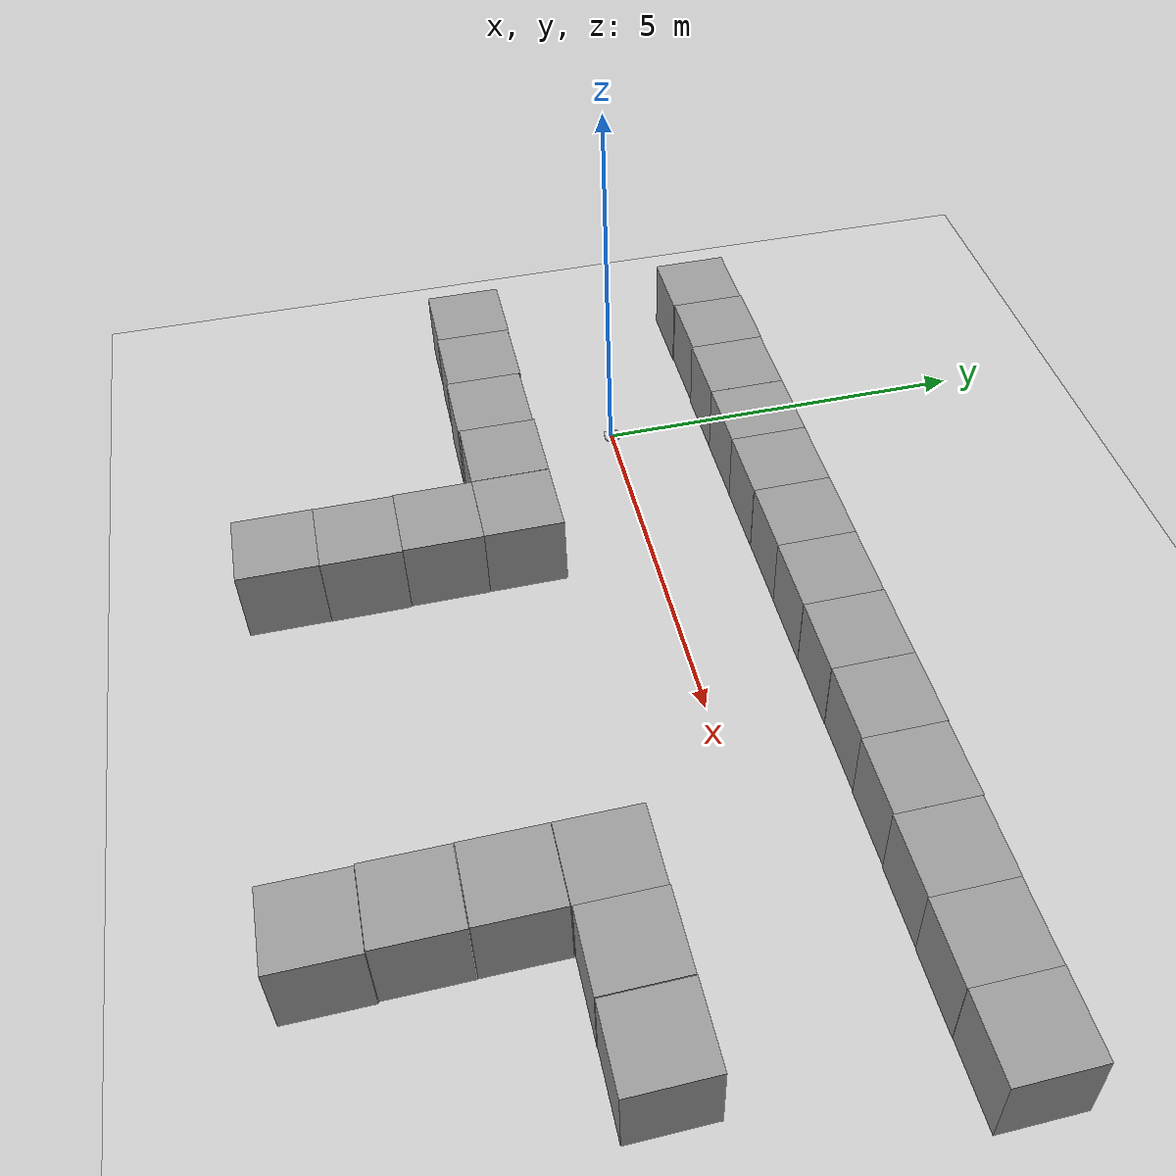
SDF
<sdf version="1.7">
 <world name="default">
  <light name="sun" type="directional">
   <pose>0 0 10 0 -0 0</pose>
   <diffuse>0.8 0.8 0.8 1</diffuse>
   <specular>0.2 0.2 0.2 1</specular>
   <attenuation>
    <range>1000</range>
    <constant>0.9</constant>
    <linear>0.01</linear>
    <quadratic>0.001</quadratic>
   </attenuation>
   <direction>-0.5 0.1 -0.9</direction>
   <spot><inner_angle>0</inner_angle><outer_angle>0</outer_angle><falloff>0</falloff></spot>
  </light>
  <model name="ground_plane">
   <static>1</static>
   <link name="link">
    <collision name="collision">
     <geometry><plane><normal>0 0 1</normal><size>100 100</size></plane></geometry>
     <surface>
      <contact><collide_bitmask>65535</collide_bitmask></contact>
      <friction><ode><mu>100</mu><mu2>50</mu2></ode></friction>
     </surface>
    </collision>
    <visual name="visual">
     <cast_shadows>0</cast_shadows>
     <geometry><plane><normal>0 0 1</normal><size>100 100</size></plane></geometry>
     <material>
      <script><uri>file://media/materials/scripts/gazebo.material</uri><name>Gazebo/Grey</name></script>
     </material>
    </visual>
   </link>
  </model>
  <gravity>0 0 -9.8</gravity>
  <magnetic_field>6e-06 2.3e-05 -4.2e-05</magnetic_field>
  <atmosphere type="adiabatic"/>
  <physics type="ode">
   <max_step_size>0.001</max_step_size>
   <real_time_factor>1</real_time_factor>
   <real_time_update_rate>1000</real_time_update_rate>
  </physics>
  <scene><ambient>0.4 0.4 0.4 1</ambient><background>0.7 0.7 0.7 1</background><shadows>1</shadows></scene>
  <spherical_coordinates>
   <surface_model>EARTH_WGS84</surface_model>
   <latitude_deg>0</latitude_deg>
   <longitude_deg>0</longitude_deg>
   <elevation>0</elevation>
   <heading_deg>0</heading_deg>
  </spherical_coordinates>
  <model name="fwomni">
   <link name="base_footprint">
    <inertial>
     <pose>0.002014 -0 0.005878 0 -0 0</pose>
     <mass>3.04689</mass>
     <inertia>
      <ixx>0.00914958</ixx>
      <ixy>-2.00784e-20</ixy>
      <ixz>-0.000169029</ixz>
      <iyy>0.00953652</iyy>
      <iyz>-2.13965e-20</iyz>
      <izz>0.0183689</izz>
     </inertia>
    </inertial>
    <collision name="base_footprint_fixed_joint_lump__base_link_collision">
     <pose>0 0 0.005 0 -0 0</pose>
     <geometry>
      <mesh>
       <scale>0.001 0.001 0.001</scale>
       <uri>/home/dell/Desktop/noetic/fwomni_ws/src/fwomni/meshes/base_link.stl</uri>
      </mesh>
     </geometry>
     <surface><friction><ode><mu>0.2</mu><mu2>0.2</mu2></ode></friction></surface>
    </collision>
    <collision name="base_footprint_fixed_joint_lump__rplidar_collision_1">
     <pose>0 0 0.045 0 -0 0</pose>
     <geometry>
      <mesh>
       <scale>0.001 0.001 0.001</scale>
       <uri>/home/dell/Desktop/noetic/fwomni_ws/src/fwomni/meshes/rplidar.stl</uri>
      </mesh>
     </geometry>
     <surface><friction><ode><mu>0.2</mu><mu2>0.2</mu2></ode></friction></surface>
    </collision>
    <visual name="base_footprint_fixed_joint_lump__base_link_visual">
     <pose>0 0 0.005 0 -0 0</pose>
     <geometry>
      <mesh>
       <scale>0.001 0.001 0.001</scale>
       <uri>/home/dell/Desktop/noetic/fwomni_ws/src/fwomni/meshes/base_link.stl</uri>
      </mesh>
     </geometry>
     <material>
      <script><name>Gazebo/Silver</name><uri>file://media/materials/scripts/gazebo.material</uri></script>
     </material>
    </visual>
    <visual name="base_footprint_fixed_joint_lump__rplidar_visual_1">
     <pose>0 0 0.045 0 -0 0</pose>
     <geometry>
      <mesh>
       <scale>0.001 0.001 0.001</scale>
       <uri>/home/dell/Desktop/noetic/fwomni_ws/src/fwomni/meshes/rplidar.stl</uri>
      </mesh>
     </geometry>
     <material>
      <script><name>Gazebo/Silver</name><uri>file://media/materials/scripts/gazebo.material</uri></script>
     </material>
    </visual>
    <self_collide>1</self_collide>
    <sensor name="head_hokuyo_sensor" type="ray">
     <visualize>0</visualize>
     <update_rate>20</update_rate>
     <ray>
      <scan>
       <horizontal>
        <samples>1400</samples>
        <resolution>1</resolution>
        <min_angle>-3.14159</min_angle>
        <max_angle>3.14159</max_angle>
       </horizontal>
       <vertical><samples>1</samples><min_angle>0</min_angle><max_angle>0</max_angle></vertical>
      </scan>
      <range><min>0.05</min><max>12</max><resolution>0.01</resolution></range>
      <noise><type>gaussian</type><mean>0</mean><stddev>0.01</stddev></noise>
     </ray>
     <plugin name="gazebo_ros_head_hokuyo_controller" filename="libgazebo_ros_laser.so">
      <topicName>laser/scan</topicName>
      <frameName>rplidar</frameName>
      <robotNamespace>/</robotNamespace>
     </plugin>
     <pose>0.065 0 0.07 0 -0 0</pose>
    </sensor>
   </link>
   <joint name="Cont1" type="revolute">
    <pose relative_to="base_footprint">0.085328 -0.085328 0.01 0 -0 0.785398</pose>
    <parent>base_footprint</parent>
    <child>front_right</child>
    <axis>
     <xyz>0 1 0</xyz>
     <limit><lower>-1e+16</lower><upper>1e+16</upper></limit>
     <dynamics><spring_reference>0</spring_reference><spring_stiffness>0</spring_stiffness></dynamics>
    </axis>
   </joint>
   <link name="front_right">
    <pose relative_to="Cont1">0 0 0 0 -0 0</pose>
    <inertial>
     <pose>0.003 -0 0 0 -0 0</pose>
     <mass>0.0147969</mass>
     <inertia><ixx>0</ixx><ixy>0</ixy><ixz>0</ixz><iyy>1e-06</iyy><iyz>0</iyz><izz>0</izz></inertia>
    </inertial>
    <collision name="front_right_collision">
     <pose>0 0 0 0 0 -1.5708</pose>
     <geometry>
      <mesh>
       <scale>0.001 0.001 0.001</scale>
       <uri>/home/dell/Desktop/noetic/fwomni_ws/src/fwomni/meshes/wheel.stl</uri>
      </mesh>
     </geometry>
     <surface><friction><ode><mu>0.2</mu><mu2>0.2</mu2></ode></friction></surface>
    </collision>
    <visual name="front_right_visual">
     <pose>0 0 0 0 0 -1.5708</pose>
     <geometry>
      <mesh>
       <scale>0.001 0.001 0.001</scale>
       <uri>/home/dell/Desktop/noetic/fwomni_ws/src/fwomni/meshes/wheel.stl</uri>
      </mesh>
     </geometry>
     <material>
      <script><name>Gazebo/Silver</name><uri>file://media/materials/scripts/gazebo.material</uri></script>
     </material>
    </visual>
    <self_collide>1</self_collide>
   </link>
   <joint name="Cont2" type="revolute">
    <pose relative_to="base_footprint">0.085328 0.085328 0.01 0 -0 2.35619</pose>
    <parent>base_footprint</parent>
    <child>front_left</child>
    <axis>
     <xyz>0 1 0</xyz>
     <limit><lower>-1e+16</lower><upper>1e+16</upper></limit>
     <dynamics><spring_reference>0</spring_reference><spring_stiffness>0</spring_stiffness></dynamics>
    </axis>
   </joint>
   <link name="front_left">
    <pose relative_to="Cont2">0 0 0 0 -0 0</pose>
    <inertial>
     <pose>0.003 -0 0 0 -0 0</pose>
     <mass>0.0147969</mass>
     <inertia><ixx>0</ixx><ixy>0</ixy><ixz>0</ixz><iyy>1e-06</iyy><iyz>0</iyz><izz>0</izz></inertia>
    </inertial>
    <collision name="front_left_collision">
     <pose>0 0 0 0 0 -1.5708</pose>
     <geometry>
      <mesh>
       <scale>0.001 0.001 0.001</scale>
       <uri>/home/dell/Desktop/noetic/fwomni_ws/src/fwomni/meshes/wheel.stl</uri>
      </mesh>
     </geometry>
     <surface><friction><ode><mu>0.2</mu><mu2>0.2</mu2></ode></friction></surface>
    </collision>
    <visual name="front_left_visual">
     <pose>0 0 0 0 0 -1.5708</pose>
     <geometry>
      <mesh>
       <scale>0.001 0.001 0.001</scale>
       <uri>/home/dell/Desktop/noetic/fwomni_ws/src/fwomni/meshes/wheel.stl</uri>
      </mesh>
     </geometry>
     <material>
      <script><name>Gazebo/Silver</name><uri>file://media/materials/scripts/gazebo.material</uri></script>
     </material>
    </visual>
    <self_collide>1</self_collide>
   </link>
   <joint name="Cont3" type="revolute">
    <pose relative_to="base_footprint">-0.085328 0.085328 0.01 0 0 -2.35619</pose>
    <parent>base_footprint</parent>
    <child>rear_left</child>
    <axis>
     <xyz>0 1 0</xyz>
     <limit><lower>-1e+16</lower><upper>1e+16</upper></limit>
     <dynamics><spring_reference>0</spring_reference><spring_stiffness>0</spring_stiffness></dynamics>
    </axis>
   </joint>
   <link name="rear_left">
    <pose relative_to="Cont3">0 0 0 0 -0 0</pose>
    <inertial>
     <pose>0.003 -0 0 0 -0 0</pose>
     <mass>0.0147969</mass>
     <inertia><ixx>0</ixx><ixy>0</ixy><ixz>0</ixz><iyy>1e-06</iyy><iyz>0</iyz><izz>0</izz></inertia>
    </inertial>
    <collision name="rear_left_collision">
     <pose>0 0 0 0 0 -1.5708</pose>
     <geometry>
      <mesh>
       <scale>0.001 0.001 0.001</scale>
       <uri>/home/dell/Desktop/noetic/fwomni_ws/src/fwomni/meshes/wheel.stl</uri>
      </mesh>
     </geometry>
     <surface><friction><ode><mu>0.2</mu><mu2>0.2</mu2></ode></friction></surface>
    </collision>
    <visual name="rear_left_visual">
     <pose>0 0 0 0 0 -1.5708</pose>
     <geometry>
      <mesh>
       <scale>0.001 0.001 0.001</scale>
       <uri>/home/dell/Desktop/noetic/fwomni_ws/src/fwomni/meshes/wheel.stl</uri>
      </mesh>
     </geometry>
     <material>
      <script><name>Gazebo/Silver</name><uri>file://media/materials/scripts/gazebo.material</uri></script>
     </material>
    </visual>
    <self_collide>1</self_collide>
   </link>
   <joint name="Cont4" type="revolute">
    <pose relative_to="base_footprint">-0.085328 -0.085328 0.01 0 0 -0.785398</pose>
    <parent>base_footprint</parent>
    <child>rear_right</child>
    <axis>
     <xyz>0 1 0</xyz>
     <limit><lower>-1e+16</lower><upper>1e+16</upper></limit>
     <dynamics><spring_reference>0</spring_reference><spring_stiffness>0</spring_stiffness></dynamics>
    </axis>
   </joint>
   <link name="rear_right">
    <pose relative_to="Cont4">0 0 0 0 -0 0</pose>
    <inertial>
     <pose>0.003 -0 0 0 -0 0</pose>
     <mass>0.0147969</mass>
     <inertia><ixx>0</ixx><ixy>0</ixy><ixz>0</ixz><iyy>1e-06</iyy><iyz>0</iyz><izz>0</izz></inertia>
    </inertial>
    <collision name="rear_right_collision">
     <pose>0 0 0 0 0 -1.5708</pose>
     <geometry>
      <mesh>
       <scale>0.001 0.001 0.001</scale>
       <uri>/home/dell/Desktop/noetic/fwomni_ws/src/fwomni/meshes/wheel.stl</uri>
      </mesh>
     </geometry>
     <surface><friction><ode><mu>0.2</mu><mu2>0.2</mu2></ode></friction></surface>
    </collision>
    <visual name="rear_right_visual">
     <pose>0 0 0 0 0 -1.5708</pose>
     <geometry>
      <mesh>
       <scale>0.001 0.001 0.001</scale>
       <uri>/home/dell/Desktop/noetic/fwomni_ws/src/fwomni/meshes/wheel.stl</uri>
      </mesh>
     </geometry>
     <material>
      <script><name>Gazebo/Silver</name><uri>file://media/materials/scripts/gazebo.material</uri></script>
     </material>
    </visual>
    <self_collide>1</self_collide>
   </link>
   <plugin name="control" filename="libgazebo_ros_control.so"><robotNamespace>/</robotNamespace></plugin>
   <static>0</static>
   <plugin name="mecanum_drive" filename="libgazebo_ros_planar_move.so">
    <commandTopic>cmd_vel</commandTopic>
    <odometryTopic>odom</odometryTopic>
    <odometryFrame>odom</odometryFrame>
    <odometryRate>100.0</odometryRate>
    <robotBaseFrame>base_footprint</robotBaseFrame>
    <publishTF>1</publishTF>
    <robotNamespace>/</robotNamespace>
   </plugin>
   <pose>7e-06 1.2e-05 -3.6e-05 0 8e-06 1.8e-05</pose>
  </model>
  <model name="unit_box_3">
   <pose>0.036318 -1.67806 0.5 0 -0 1.9e-05</pose>
   <link name="link">
    <inertial>
     <mass>1</mass>
     <inertia>
      <ixx>0.166667</ixx>
      <ixy>0</ixy>
      <ixz>0</ixz>
      <iyy>0.166667</iyy>
      <iyz>0</iyz>
      <izz>0.166667</izz>
     </inertia>
    </inertial>
    <collision name="collision"><geometry><box><size>1 1 1</size></box></geometry></collision>
    <visual name="visual">
     <geometry><box><size>1 1 1</size></box></geometry>
     <material>
      <script><name>Gazebo/Grey</name><uri>file://media/materials/scripts/gazebo.material</uri></script>
     </material>
    </visual>
   </link>
  </model>
  <model name="unit_box">
   <pose>0.05813 1.77287 0.499995 0 -1e-05 0.002721</pose>
   <link name="link">
    <inertial>
     <mass>1</mass>
     <inertia>
      <ixx>0.166667</ixx>
      <ixy>0</ixy>
      <ixz>0</ixz>
      <iyy>0.166667</iyy>
      <iyz>0</iyz>
      <izz>0.166667</izz>
     </inertia>
    </inertial>
    <collision name="collision"><geometry><box><size>1 1 1</size></box></geometry></collision>
    <visual name="visual">
     <geometry><box><size>1 1 1</size></box></geometry>
     <material>
      <script><name>Gazebo/Grey</name><uri>file://media/materials/scripts/gazebo.material</uri></script>
     </material>
    </visual>
   </link>
  </model>
  <model name="unit_box_0">
   <pose>1.05834 1.77487 0.499995 1e-05 0 0.002307</pose>
   <link name="link">
    <inertial>
     <mass>1</mass>
     <inertia>
      <ixx>0.166667</ixx>
      <ixy>0</ixy>
      <ixz>0</ixz>
      <iyy>0.166667</iyy>
      <iyz>0</iyz>
      <izz>0.166667</izz>
     </inertia>
    </inertial>
    <collision name="collision"><geometry><box><size>1 1 1</size></box></geometry></collision>
    <visual name="visual">
     <geometry><box><size>1 1 1</size></box></geometry>
     <material>
      <script><name>Gazebo/Grey</name><uri>file://media/materials/scripts/gazebo.material</uri></script>
     </material>
    </visual>
   </link>
  </model>
  <model name="unit_box_1">
   <pose>-0.941921 1.78235 0.499995 0 -1e-05 0.002754</pose>
   <link name="link">
    <inertial>
     <mass>1</mass>
     <inertia>
      <ixx>0.166667</ixx>
      <ixy>0</ixy>
      <ixz>0</ixz>
      <iyy>0.166667</iyy>
      <iyz>0</iyz>
      <izz>0.166667</izz>
     </inertia>
    </inertial>
    <collision name="collision"><geometry><box><size>1 1 1</size></box></geometry></collision>
    <visual name="visual">
     <geometry><box><size>1 1 1</size></box></geometry>
     <material>
      <script><name>Gazebo/Grey</name><uri>file://media/materials/scripts/gazebo.material</uri></script>
     </material>
    </visual>
   </link>
  </model>
  <model name="unit_box_2">
   <pose>-1.94195 1.76608 0.499995 -1e-05 -0 0.002906</pose>
   <link name="link">
    <inertial>
     <mass>1</mass>
     <inertia>
      <ixx>0.166667</ixx>
      <ixy>0</ixy>
      <ixz>0</ixz>
      <iyy>0.166667</iyy>
      <iyz>0</iyz>
      <izz>0.166667</izz>
     </inertia>
    </inertial>
    <collision name="collision"><geometry><box><size>1 1 1</size></box></geometry></collision>
    <visual name="visual">
     <geometry><box><size>1 1 1</size></box></geometry>
     <material>
      <script><name>Gazebo/Grey</name><uri>file://media/materials/scripts/gazebo.material</uri></script>
     </material>
    </visual>
   </link>
  </model>
  <model name="unit_box_4">
   <pose>-0.963714 -1.66058 0.499995 0 1e-05 -3.7e-05</pose>
   <link name="link">
    <inertial>
     <mass>1</mass>
     <inertia>
      <ixx>0.166667</ixx>
      <ixy>0</ixy>
      <ixz>0</ixz>
      <iyy>0.166667</iyy>
      <iyz>0</iyz>
      <izz>0.166667</izz>
     </inertia>
    </inertial>
    <collision name="collision"><geometry><box><size>1 1 1</size></box></geometry></collision>
    <visual name="visual">
     <geometry><box><size>1 1 1</size></box></geometry>
     <material>
      <script><name>Gazebo/Grey</name><uri>file://media/materials/scripts/gazebo.material</uri></script>
     </material>
    </visual>
   </link>
  </model>
  <model name="unit_box_5">
   <pose>-1.96383 -1.64981 0.499995 0 -1e-05 -0.000138</pose>
   <link name="link">
    <inertial>
     <mass>1</mass>
     <inertia>
      <ixx>0.166667</ixx>
      <ixy>0</ixy>
      <ixz>0</ixz>
      <iyy>0.166667</iyy>
      <iyz>0</iyz>
      <izz>0.166667</izz>
     </inertia>
    </inertial>
    <collision name="collision"><geometry><box><size>1 1 1</size></box></geometry></collision>
    <visual name="visual">
     <geometry><box><size>1 1 1</size></box></geometry>
     <material>
      <script><name>Gazebo/Grey</name><uri>file://media/materials/scripts/gazebo.material</uri></script>
     </material>
    </visual>
   </link>
  </model>
  <model name="unit_box_6">
   <pose>1.03632 -1.65738 0.5 0 -0 1.9e-05</pose>
   <link name="link">
    <inertial>
     <mass>1</mass>
     <inertia>
      <ixx>0.166667</ixx>
      <ixy>0</ixy>
      <ixz>0</ixz>
      <iyy>0.166667</iyy>
      <iyz>0</iyz>
      <izz>0.166667</izz>
     </inertia>
    </inertial>
    <collision name="collision"><geometry><box><size>1 1 1</size></box></geometry></collision>
    <visual name="visual">
     <geometry><box><size>1 1 1</size></box></geometry>
     <material>
      <script><name>Gazebo/Grey</name><uri>file://media/materials/scripts/gazebo.material</uri></script>
     </material>
    </visual>
   </link>
  </model>
  <model name="unit_box_7">
   <pose>2.04132 -1.65731 0.499995 1e-05 0 -0.000355</pose>
   <link name="link">
    <inertial>
     <mass>1</mass>
     <inertia>
      <ixx>0.166667</ixx>
      <ixy>0</ixy>
      <ixz>0</ixz>
      <iyy>0.166667</iyy>
      <iyz>0</iyz>
      <izz>0.166667</izz>
     </inertia>
    </inertial>
    <collision name="collision"><geometry><box><size>1 1 1</size></box></geometry></collision>
    <visual name="visual">
     <geometry><box><size>1 1 1</size></box></geometry>
     <material>
      <script><name>Gazebo/Grey</name><uri>file://media/materials/scripts/gazebo.material</uri></script>
     </material>
    </visual>
   </link>
  </model>
  <model name="unit_box_8">
   <pose>2.05897 1.77449 0.5 0 -0 0.001051</pose>
   <link name="link">
    <inertial>
     <mass>1</mass>
     <inertia>
      <ixx>0.166667</ixx>
      <ixy>0</ixy>
      <ixz>0</ixz>
      <iyy>0.166667</iyy>
      <iyz>0</iyz>
      <izz>0.166667</izz>
     </inertia>
    </inertial>
    <collision name="collision"><geometry><box><size>1 1 1</size></box></geometry></collision>
    <visual name="visual">
     <geometry><box><size>1 1 1</size></box></geometry>
     <material>
      <script><name>Gazebo/Grey</name><uri>file://media/materials/scripts/gazebo.material</uri></script>
     </material>
    </visual>
   </link>
  </model>
  <model name="unit_box_9">
   <pose>3.05901 1.77862 0.499995 -1e-05 -0 0.000976</pose>
   <link name="link">
    <inertial>
     <mass>1</mass>
     <inertia>
      <ixx>0.166667</ixx>
      <ixy>0</ixy>
      <ixz>0</ixz>
      <iyy>0.166667</iyy>
      <iyz>0</iyz>
      <izz>0.166667</izz>
     </inertia>
    </inertial>
    <collision name="collision"><geometry><box><size>1 1 1</size></box></geometry></collision>
    <visual name="visual">
     <geometry><box><size>1 1 1</size></box></geometry>
     <material>
      <script><name>Gazebo/Grey</name><uri>file://media/materials/scripts/gazebo.material</uri></script>
     </material>
    </visual>
   </link>
  </model>
  <model name="unit_box_10">
   <pose>4.05907 1.77709 0.5 0 -0 0.000858</pose>
   <link name="link">
    <inertial>
     <mass>1</mass>
     <inertia>
      <ixx>0.166667</ixx>
      <ixy>0</ixy>
      <ixz>0</ixz>
      <iyy>0.166667</iyy>
      <iyz>0</iyz>
      <izz>0.166667</izz>
     </inertia>
    </inertial>
    <collision name="collision"><geometry><box><size>1 1 1</size></box></geometry></collision>
    <visual name="visual">
     <geometry><box><size>1 1 1</size></box></geometry>
     <material>
      <script><name>Gazebo/Grey</name><uri>file://media/materials/scripts/gazebo.material</uri></script>
     </material>
    </visual>
   </link>
  </model>
  <model name="unit_box_11">
   <pose>5.05921 1.78114 0.5 0 -0 0.000585</pose>
   <link name="link">
    <inertial>
     <mass>1</mass>
     <inertia>
      <ixx>0.166667</ixx>
      <ixy>0</ixy>
      <ixz>0</ixz>
      <iyy>0.166667</iyy>
      <iyz>0</iyz>
      <izz>0.166667</izz>
     </inertia>
    </inertial>
    <collision name="collision"><geometry><box><size>1 1 1</size></box></geometry></collision>
    <visual name="visual">
     <geometry><box><size>1 1 1</size></box></geometry>
     <material>
      <script><name>Gazebo/Grey</name><uri>file://media/materials/scripts/gazebo.material</uri></script>
     </material>
    </visual>
   </link>
  </model>
  <model name="unit_box_12">
   <pose>6.05922 1.78596 0.5 0 -0 0.000566</pose>
   <link name="link">
    <inertial>
     <mass>1</mass>
     <inertia>
      <ixx>0.166667</ixx>
      <ixy>0</ixy>
      <ixz>0</ixz>
      <iyy>0.166667</iyy>
      <iyz>0</iyz>
      <izz>0.166667</izz>
     </inertia>
    </inertial>
    <collision name="collision"><geometry><box><size>1 1 1</size></box></geometry></collision>
    <visual name="visual">
     <geometry><box><size>1 1 1</size></box></geometry>
     <material>
      <script><name>Gazebo/Grey</name><uri>file://media/materials/scripts/gazebo.material</uri></script>
     </material>
    </visual>
   </link>
  </model>
  <model name="unit_box_13">
   <pose>7.0593 1.77764 0.499995 -0 -1e-05 0.000413</pose>
   <link name="link">
    <inertial>
     <mass>1</mass>
     <inertia>
      <ixx>0.166667</ixx>
      <ixy>0</ixy>
      <ixz>0</ixz>
      <iyy>0.166667</iyy>
      <iyz>0</iyz>
      <izz>0.166667</izz>
     </inertia>
    </inertial>
    <collision name="collision"><geometry><box><size>1 1 1</size></box></geometry></collision>
    <visual name="visual">
     <geometry><box><size>1 1 1</size></box></geometry>
     <material>
      <script><name>Gazebo/Grey</name><uri>file://media/materials/scripts/gazebo.material</uri></script>
     </material>
    </visual>
   </link>
  </model>
  <model name="unit_box_14">
   <pose>8.05937 1.76664 0.499995 0 1e-05 0.000321</pose>
   <link name="link">
    <inertial>
     <mass>1</mass>
     <inertia>
      <ixx>0.166667</ixx>
      <ixy>0</ixy>
      <ixz>0</ixz>
      <iyy>0.166667</iyy>
      <iyz>0</iyz>
      <izz>0.166667</izz>
     </inertia>
    </inertial>
    <collision name="collision"><geometry><box><size>1 1 1</size></box></geometry></collision>
    <visual name="visual">
     <geometry><box><size>1 1 1</size></box></geometry>
     <material>
      <script><name>Gazebo/Grey</name><uri>file://media/materials/scripts/gazebo.material</uri></script>
     </material>
    </visual>
   </link>
  </model>
  <model name="unit_box_15">
   <pose>7.29898 -1.66943 0.499995 1e-05 -0 5e-06</pose>
   <link name="link">
    <inertial>
     <mass>1</mass>
     <inertia>
      <ixx>0.166667</ixx>
      <ixy>0</ixy>
      <ixz>0</ixz>
      <iyy>0.166667</iyy>
      <iyz>0</iyz>
      <izz>0.166667</izz>
     </inertia>
    </inertial>
    <collision name="collision"><geometry><box><size>1 1 1</size></box></geometry></collision>
    <visual name="visual">
     <geometry><box><size>1 1 1</size></box></geometry>
     <material>
      <script><name>Gazebo/Grey</name><uri>file://media/materials/scripts/gazebo.material</uri></script>
     </material>
    </visual>
   </link>
  </model>
  <model name="unit_box_16">
   <pose>8.29899 -1.65957 0.499995 1e-05 -0 0</pose>
   <link name="link">
    <inertial>
     <mass>1</mass>
     <inertia>
      <ixx>0.166667</ixx>
      <ixy>0</ixy>
      <ixz>0</ixz>
      <iyy>0.166667</iyy>
      <iyz>0</iyz>
      <izz>0.166667</izz>
     </inertia>
    </inertial>
    <collision name="collision"><geometry><box><size>1 1 1</size></box></geometry></collision>
    <visual name="visual">
     <geometry><box><size>1 1 1</size></box></geometry>
     <material>
      <script><name>Gazebo/Grey</name><uri>file://media/materials/scripts/gazebo.material</uri></script>
     </material>
    </visual>
   </link>
  </model>
  <model name="unit_box_17">
   <pose>9.05936 1.76026 0.499995 0 -1e-05 0.00032</pose>
   <link name="link">
    <inertial>
     <mass>1</mass>
     <inertia>
      <ixx>0.166667</ixx>
      <ixy>0</ixy>
      <ixz>0</ixz>
      <iyy>0.166667</iyy>
      <iyz>0</iyz>
      <izz>0.166667</izz>
     </inertia>
    </inertial>
    <collision name="collision"><geometry><box><size>1 1 1</size></box></geometry></collision>
    <visual name="visual">
     <geometry><box><size>1 1 1</size></box></geometry>
     <material>
      <script><name>Gazebo/Grey</name><uri>file://media/materials/scripts/gazebo.material</uri></script>
     </material>
    </visual>
   </link>
  </model>
  <model name="unit_box_18">
   <pose>10.0594 1.76553 0.499995 0 1e-05 0.000316</pose>
   <link name="link">
    <inertial>
     <mass>1</mass>
     <inertia>
      <ixx>0.166667</ixx>
      <ixy>0</ixy>
      <ixz>0</ixz>
      <iyy>0.166667</iyy>
      <iyz>0</iyz>
      <izz>0.166667</izz>
     </inertia>
    </inertial>
    <collision name="collision"><geometry><box><size>1 1 1</size></box></geometry></collision>
    <visual name="visual">
     <geometry><box><size>1 1 1</size></box></geometry>
     <material>
      <script><name>Gazebo/Grey</name><uri>file://media/materials/scripts/gazebo.material</uri></script>
     </material>
    </visual>
   </link>
  </model>
  <model name="unit_box_19">
   <pose>9.30868 -1.65454 0.499995 -1e-05 0 0</pose>
   <link name="link">
    <inertial>
     <mass>1</mass>
     <inertia>
      <ixx>0.166667</ixx>
      <ixy>0</ixy>
      <ixz>0</ixz>
      <iyy>0.166667</iyy>
      <iyz>0</iyz>
      <izz>0.166667</izz>
     </inertia>
    </inertial>
    <collision name="collision"><geometry><box><size>1 1 1</size></box></geometry></collision>
    <visual name="visual">
     <geometry><box><size>1 1 1</size></box></geometry>
     <material>
      <script><name>Gazebo/Grey</name><uri>file://media/materials/scripts/gazebo.material</uri></script>
     </material>
    </visual>
   </link>
  </model>
  <model name="unit_box_20">
   <pose>2.04495 -2.65733 0.499995 -1e-05 -0 -0.000425</pose>
   <link name="link">
    <inertial>
     <mass>1</mass>
     <inertia>
      <ixx>0.166667</ixx>
      <ixy>0</ixy>
      <ixz>0</ixz>
      <iyy>0.166667</iyy>
      <iyz>0</iyz>
      <izz>0.166667</izz>
     </inertia>
    </inertial>
    <collision name="collision"><geometry><box><size>1 1 1</size></box></geometry></collision>
    <visual name="visual">
     <geometry><box><size>1 1 1</size></box></geometry>
     <material>
      <script><name>Gazebo/Grey</name><uri>file://media/materials/scripts/gazebo.material</uri></script>
     </material>
    </visual>
   </link>
  </model>
  <model name="unit_box_21">
   <pose>2.05964 -3.65745 0.499995 -1e-05 -0 -0.000569</pose>
   <link name="link">
    <inertial>
     <mass>1</mass>
     <inertia>
      <ixx>0.166667</ixx>
      <ixy>0</ixy>
      <ixz>0</ixz>
      <iyy>0.166667</iyy>
      <iyz>0</iyz>
      <izz>0.166667</izz>
     </inertia>
    </inertial>
    <collision name="collision"><geometry><box><size>1 1 1</size></box></geometry></collision>
    <visual name="visual">
     <geometry><box><size>1 1 1</size></box></geometry>
     <material>
      <script><name>Gazebo/Grey</name><uri>file://media/materials/scripts/gazebo.material</uri></script>
     </material>
    </visual>
   </link>
  </model>
  <model name="unit_box_22">
   <pose>7.2995 -2.67374 0.499995 -1e-05 -0 -0</pose>
   <link name="link">
    <inertial>
     <mass>1</mass>
     <inertia>
      <ixx>0.166667</ixx>
      <ixy>0</ixy>
      <ixz>0</ixz>
      <iyy>0.166667</iyy>
      <iyz>0</iyz>
      <izz>0.166667</izz>
     </inertia>
    </inertial>
    <collision name="collision"><geometry><box><size>1 1 1</size></box></geometry></collision>
    <visual name="visual">
     <geometry><box><size>1 1 1</size></box></geometry>
     <material>
      <script><name>Gazebo/Grey</name><uri>file://media/materials/scripts/gazebo.material</uri></script>
     </material>
    </visual>
   </link>
  </model>
  <model name="unit_box_23">
   <pose>7.30443 -3.68378 0.499995 0 1e-05 0</pose>
   <link name="link">
    <inertial>
     <mass>1</mass>
     <inertia>
      <ixx>0.166667</ixx>
      <ixy>0</ixy>
      <ixz>0</ixz>
      <iyy>0.166667</iyy>
      <iyz>0</iyz>
      <izz>0.166667</izz>
     </inertia>
    </inertial>
    <collision name="collision"><geometry><box><size>1 1 1</size></box></geometry></collision>
    <visual name="visual">
     <geometry><box><size>1 1 1</size></box></geometry>
     <material>
      <script><name>Gazebo/Grey</name><uri>file://media/materials/scripts/gazebo.material</uri></script>
     </material>
    </visual>
   </link>
  </model>
  <model name="unit_box_24">
   <pose>2.05318 -4.65747 0.499995 -1e-05 -0 -0.00062</pose>
   <link name="link">
    <inertial>
     <mass>1</mass>
     <inertia>
      <ixx>0.166667</ixx>
      <ixy>0</ixy>
      <ixz>0</ixz>
      <iyy>0.166667</iyy>
      <iyz>0</iyz>
      <izz>0.166667</izz>
     </inertia>
    </inertial>
    <collision name="collision"><geometry><box><size>1 1 1</size></box></geometry></collision>
    <visual name="visual">
     <geometry><box><size>1 1 1</size></box></geometry>
     <material>
      <script><name>Gazebo/Grey</name><uri>file://media/materials/scripts/gazebo.material</uri></script>
     </material>
    </visual>
   </link>
  </model>
  <model name="unit_box_25">
   <pose>7.32598 -4.68735 0.5 0 -0 0</pose>
   <link name="link">
    <inertial>
     <mass>1</mass>
     <inertia>
      <ixx>0.166667</ixx>
      <ixy>0</ixy>
      <ixz>0</ixz>
      <iyy>0.166667</iyy>
      <iyz>0</iyz>
      <izz>0.166667</izz>
     </inertia>
    </inertial>
    <collision name="collision"><geometry><box><size>1 1 1</size></box></geometry></collision>
    <visual name="visual">
     <geometry><box><size>1 1 1</size></box></geometry>
     <material>
      <script><name>Gazebo/Grey</name><uri>file://media/materials/scripts/gazebo.material</uri></script>
     </material>
    </visual>
   </link>
  </model>
 </world>
</sdf>
